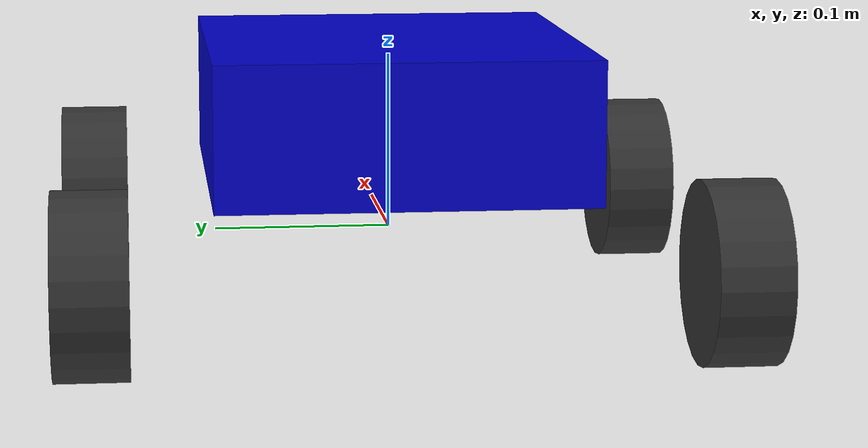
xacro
<?xml version="1.0"?>
<robot xmlns:xacro="http://www.ros.org/wiki/xacro" name="md_4wd_robot">

  <!-- ========================================================================
       Arguments (YAML에서 전달받는 파라미터)
       ======================================================================== -->
  <!-- 시리얼 통신 -->
  <xacro:arg name="port" default="/dev/ttyMotor"/>
  <xacro:arg name="baudrate" default="57600"/>

  <!-- 모터 드라이버 ID -->
  <xacro:arg name="front_driver_id" default="1"/>
  <xacro:arg name="rear_driver_id" default="2"/>
  <xacro:arg name="id_mdui" default="184"/>
  <xacro:arg name="id_mdt" default="183"/>

  <!-- 로봇 기구학 -->
  <xacro:arg name="wheel_radius" default="0.05"/>
  <xacro:arg name="wheel_separation" default="0.3"/>
  <xacro:arg name="wheelbase" default="0.3"/>

  <!-- 모터/엔코더 -->
  <xacro:arg name="gear_ratio" default="15"/>
  <xacro:arg name="poles" default="10"/>

  <!-- ========================================================================
       Properties (계산용 변수)
       ======================================================================== -->
  <xacro:property name="wheel_radius" value="$(arg wheel_radius)"/>
  <xacro:property name="wheel_separation" value="$(arg wheel_separation)"/>
  <xacro:property name="wheelbase" value="$(arg wheelbase)"/>
  <xacro:property name="wheel_width" value="0.04"/>

  <!-- ========================================================================
       Materials (재질 정의)
       ======================================================================== -->
  <material name="blue">
    <color rgba="0.0 0.0 0.8 1.0"/>
  </material>

  <material name="gray">
    <color rgba="0.5 0.5 0.5 1.0"/>
  </material>

  <material name="dark_gray">
    <color rgba="0.2 0.2 0.2 1.0"/>
  </material>

  <!-- ========================================================================
       Wheel Macro (휠 매크로)
       ======================================================================== -->
  <xacro:macro name="wheel" params="prefix x_pos y_pos">
    <link name="${prefix}_wheel_link">
      <visual>
        <origin xyz="0 0 0" rpy="${pi/2} 0 0"/>
        <geometry>
          <cylinder radius="${wheel_radius}" length="${wheel_width}"/>
        </geometry>
        <material name="dark_gray"/>
      </visual>
      <collision>
        <origin xyz="0 0 0" rpy="${pi/2} 0 0"/>
        <geometry>
          <cylinder radius="${wheel_radius}" length="${wheel_width}"/>
        </geometry>
      </collision>
      <inertial>
        <mass value="0.5"/>
        <origin xyz="0 0 0" rpy="${pi/2} 0 0"/>
        <inertia
          ixx="0.00052" ixy="0" ixz="0"
          iyy="0.00052" iyz="0"
          izz="0.00063"/>
      </inertial>
    </link>

    <joint name="${prefix}_wheel_joint" type="continuous">
      <parent link="base_link"/>
      <child link="${prefix}_wheel_link"/>
      <origin xyz="${x_pos} ${y_pos} 0" rpy="0 0 0"/>
      <axis xyz="0 1 0"/>
      <dynamics damping="0.1" friction="0.1"/>
    </joint>
  </xacro:macro>

  <!-- ========================================================================
       Base Link (로봇 몸체)
       ======================================================================== -->
  <link name="base_link">
    <visual>
      <origin xyz="0 0 ${wheel_radius + 0.02}" rpy="0 0 0"/>
      <geometry>
        <box size="${wheelbase * 0.8} ${wheel_separation * 0.7} 0.08"/>
      </geometry>
      <material name="blue"/>
    </visual>
    <collision>
      <origin xyz="0 0 ${wheel_radius + 0.02}" rpy="0 0 0"/>
      <geometry>
        <box size="${wheelbase * 0.8} ${wheel_separation * 0.7} 0.08"/>
      </geometry>
    </collision>
    <inertial>
      <mass value="5.0"/>
      <origin xyz="0 0 ${wheel_radius + 0.02}" rpy="0 0 0"/>
      <inertia
        ixx="0.05" ixy="0" ixz="0"
        iyy="0.05" iyz="0"
        izz="0.1"/>
    </inertial>
  </link>

  <!-- ========================================================================
       Footprint Link (오도메트리 기준점)
       ======================================================================== -->
  <link name="base_footprint"/>

  <joint name="base_footprint_joint" type="fixed">
    <parent link="base_footprint"/>
    <child link="base_link"/>
    <origin xyz="0 0 0" rpy="0 0 0"/>
  </joint>

  <!-- Front Left Wheel -->
  <xacro:wheel prefix="front_left"
               x_pos="${wheelbase/2}"
               y_pos="${wheel_separation/2 + wheel_width/2}"/>

  <!-- Front Right Wheel -->
  <xacro:wheel prefix="front_right"
               x_pos="${wheelbase/2}"
               y_pos="${-wheel_separation/2 - wheel_width/2}"/>

  <!-- Rear Left Wheel -->
  <xacro:wheel prefix="rear_left"
               x_pos="${-wheelbase/2}"
               y_pos="${wheel_separation/2 + wheel_width/2}"/>

  <!-- Rear Right Wheel -->
  <xacro:wheel prefix="rear_right"
               x_pos="${-wheelbase/2}"
               y_pos="${-wheel_separation/2 - wheel_width/2}"/>

  <ros2_control name="md_4wd_hardware_interface" type="system">
    <hardware>
      <plugin>md_hardware/MD4WDHardware</plugin>
      <!-- 시리얼 통신 파라미터 -->
      <param name="port">$(arg port)</param>
      <param name="baudrate">$(arg baudrate)</param>
      <!-- 모터 드라이버 ID -->
      <param name="front_driver_id">$(arg front_driver_id)</param>
      <param name="rear_driver_id">$(arg rear_driver_id)</param>
      <param name="id_mdui">$(arg id_mdui)</param>
      <param name="id_mdt">$(arg id_mdt)</param>
      <!-- 로봇 기구학 파라미터 -->
      <param name="wheel_radius">$(arg wheel_radius)</param>
      <param name="wheel_separation">$(arg wheel_separation)</param>
      <param name="wheelbase">$(arg wheelbase)</param>
      <param name="gear_ratio">$(arg gear_ratio)</param>
      <param name="poles">$(arg poles)</param>
    </hardware>

    <!-- 조인트 정의 (순서 중요!) -->
    <!-- [0] Front Left -->
    <joint name="front_left_wheel_joint">
      <command_interface name="velocity">
        <param name="min">-50.0</param>
        <param name="max">50.0</param>
      </command_interface>
      <state_interface name="position"/>
      <state_interface name="velocity"/>
    </joint>

    <!-- [1] Front Right -->
    <joint name="front_right_wheel_joint">
      <command_interface name="velocity">
        <param name="min">-50.0</param>
        <param name="max">50.0</param>
      </command_interface>
      <state_interface name="position"/>
      <state_interface name="velocity"/>
    </joint>

    <!-- [2] Rear Left -->
    <joint name="rear_left_wheel_joint">
      <command_interface name="velocity">
        <param name="min">-50.0</param>
        <param name="max">50.0</param>
      </command_interface>
      <state_interface name="position"/>
      <state_interface name="velocity"/>
    </joint>

    <!-- [3] Rear Right -->
    <joint name="rear_right_wheel_joint">
      <command_interface name="velocity">
        <param name="min">-50.0</param>
        <param name="max">50.0</param>
      </command_interface>
      <state_interface name="position"/>
      <state_interface name="velocity"/>
    </joint>
  </ros2_control>

</robot>
